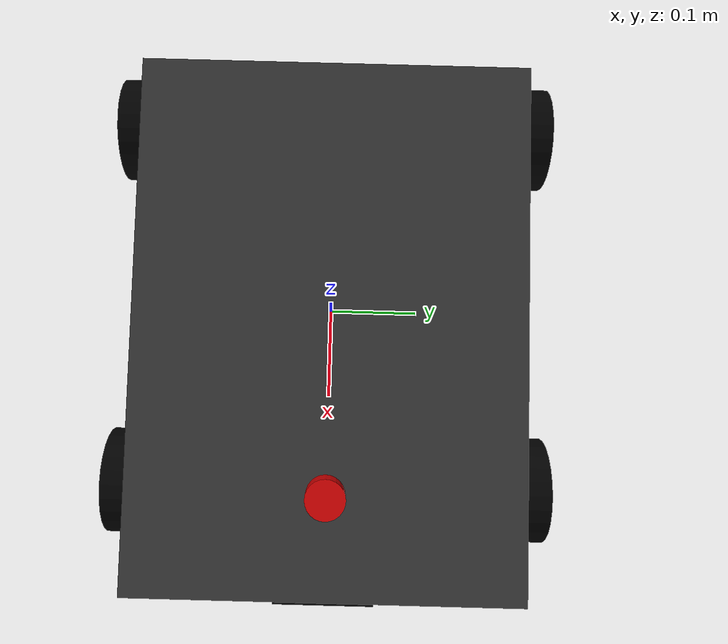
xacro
<?xml version="1.0"?>
<robot xmlns:xacro="http://www.ros.org/wiki/xacro" name="dummybot">

  <!-- Include ros2_control xacro -->
  <xacro:include filename="$(find dummybot_bringup)/description/urdf/dummybot.ros2_control.xacro"/>

  <!-- Properties -->
  <xacro:property name="use_mock_hardware" value="false"/>

  <!-- DIMENSIUNI FIZICE REALE - SISTEM ROS STANDARD -->
  <!-- X = înainte (FAȚĂ) = 36cm (ce tu numești "lățime") -->
  <!-- Y = lateral (STÂNGA-DREAPTA) = 46.5cm (ce tu numești "lungime") -->
  <!-- Z = sus (vertical) -->

  <!-- Roți -->
  <xacro:property name="wheel_radius" value="0.0555"/>     <!-- 69mm diametru / 2 -->
  <xacro:property name="wheel_width" value="0.0450"/>       <!-- 28mm grosime -->

  <!-- Distanțe între roți -->
  <xacro:property name="wheelbase" value="0.425"/>         <!-- FR-FL distanță FAȚĂ-SPATE (37.4cm) -->
  <xacro:property name="track_width" value="0.390"/>       <!-- FR-RR distanță LATERALĂ (39cm) -->

  <!-- Chassis -->
  <xacro:property name="chassis_length" value="0.495"/>    <!-- 36cm pe X (față-spate, "lățimea" ta) -->
  <xacro:property name="chassis_width" value="0.365"/>     <!-- 46.5cm pe Y (lateral, "lungimea" ta) -->
  <xacro:property name="chassis_height" value="0.142"/>    <!-- 16cm înălțime (Z) -->

  <xacro:property name="ground_clearance" value="0.070"/>  <!-- 5cm de la sol la baza chassis -->

  <!-- Poziționare roți față de chassis -->
  <!-- FR/FL la 5cm de față → +36/2 - 5 = +13cm = +0.13m -->
  <!-- RR/RL la 3cm de spate → -36/2 + 3 = -15cm = -0.15m -->
  <!-- Verificare: 13cm + 15cm = 28cm (ar trebui ~37.4cm pentru wheelbase) -->
  <!-- Corectie: 5cm față, 32.4cm spate? Sau 18.7cm față, 18.7cm spate? -->

  <!-- Să recalculăm cu wheelbase = 37.4cm: -->
  <!-- Centru roți față: +37.4/2 = +18.7cm -->
  <!-- Centru roți spate: -37.4/2 = -18.7cm -->
  <xacro:property name="front_wheel_x" value="0.195"/>     <!-- +18.7cm -->
  <xacro:property name="rear_wheel_x" value="-0.195"/>     <!-- -18.7cm -->
  <xacro:property name="left_wheel_y" value="0.210"/>     <!-- +18.7cm -->
  <xacro:property name="right_wheel_y" value="-0.210"/>     <!-- -18.7cm -->

  <!-- Offset vertical roți: centru la 5.8cm de sol, minus ground_clearance de 5cm -->
  <xacro:property name="wheel_z_offset" value="0.008"/>    <!-- 5.8cm - 5cm = 0.8cm -->
  <xacro:property name="lidar_len" value="0.037" />
  <xacro:property name="lidar_radius" value="0.018" />
  <xacro:property name="lidar_mass" value="0.015" />

  <!-- LiDAR poziționare -->
  <!-- "12cm de la fața carcasei până la început LiDAR" -->
  <!-- Dacă fața chassis e la +18cm, iar LiDAR începe la +12cm de la față... -->
  <!-- Stai, trebuie clarificat: 12cm de la MARGINEA chassis sau de la CENTRU? -->
  <!-- Presupun: 12cm de la MARGINEA din față (la +18cm) -->
  <!-- Deci început LiDAR = +18cm - 12cm = +6cm de la centru -->
  <!-- Centru LiDAR = +6cm + 1.9cm (jumătate) = +7.9cm = 0.079m -->
  <xacro:property name="lidar_x_offset" value="0.079"/>    <!-- 7.9cm înainte de centru -->
  <xacro:property name="lidar_z_offset" value="0.1775"/>   <!-- 17.75cm deasupra base_chassis -->

  <!-- ESP32 Hardware Interface -->
  <xacro:property name="serial_port" value="/dev/ttyUSB0"/>
  <xacro:property name="serial_baud" value="115200"/>
  <xacro:property name="ticks_per_revolution" value="2400"/>

  <!-- PID Controller Parameters (INT pentru ESP32, ordine: kp kd ki ko) -->
  <xacro:property name="pid_kp" value="100"/>
  <xacro:property name="pid_kd" value="25"/>
  <xacro:property name="pid_ki" value="40"/>
  <xacro:property name="pid_ko" value="25"/>

  <!-- Calibration Factors (FLOAT) -->
  <xacro:property name="calibration_fl" value="1.0"/>
  <xacro:property name="calibration_fr" value="1.0"/>
  <xacro:property name="calibration_rl" value="1.0"/>
  <xacro:property name="calibration_rr" value="1.0"/>

  <!-- Materials -->
  <material name="black">
    <color rgba="0.0 0.0 0.0 1.0"/>
  </material>

  <material name="dark_grey">
    <color rgba="0.2 0.2 0.2 1.0"/>
  </material>

  <material name="red">
    <color rgba="0.8 0.0 0.0 1.0"/>
  </material>

  <!-- BASE LINK (ROOT FRAME) -->
  <link name="base_link"/>

  <joint name="base_link_chassis_joint" type="fixed">
    <parent link="base_link"/>
    <child link="base_chassis"/>
    <origin xyz="0.0325 0 ${ground_clearance + chassis_height/2}" rpy="0 0 0"/>
  </joint>

  <!-- BASE CHASSIS -->
  <link name="base_chassis">
    <visual>
      <origin xyz="0 0 0" rpy="0 0 0"/>
      <geometry>
        <box size="${chassis_length} ${chassis_width} ${chassis_height}"/>
      </geometry>
      <material name="dark_grey"/>
    </visual>
    <collision>
      <origin xyz="0 0 0" rpy="0 0 0"/>
      <geometry>
        <box size="${chassis_length} ${chassis_width} ${chassis_height}"/>
      </geometry>
    </collision>
    <inertial>
      <origin xyz="0 0 0" rpy="0 0 0"/>
      <mass value="5.0"/>
      <inertia ixx="0.0833" ixy="0.0" ixz="0.0"
               iyy="0.1042" iyz="0.0"
               izz="0.1667"/>
    </inertial>
  </link>

  <!-- WHEEL MACRO -->
  <xacro:macro name="wheel" params="prefix x y">

    <link name="${prefix}_wheel_link">
      <visual>
        <!-- FĂRĂ rotație aici -->
        <origin xyz="0 0 0" rpy="${pi/2} 0 0"/>
        <geometry>
          <cylinder radius="${wheel_radius}" length="${wheel_width}"/>
        </geometry>
        <material name="black"/>
      </visual>
      <collision>
        <!-- FĂRĂ rotație aici -->
        <origin xyz="0 0 0" rpy="${pi/2} 0 0"/>
        <geometry>
          <cylinder radius="${wheel_radius}" length="${wheel_width}"/>
        </geometry>
      </collision>
      <inertial>
        <origin xyz="0 0 0" rpy="${pi/2} 0 0"/>
        <mass value="0.133"/>
        <inertia ixx="0.0001" ixy="0.0" ixz="0.0"
                iyy="0.0001" iyz="0.0"
                izz="0.0001"/>
      </inertial>
    </link>

    <joint name="${prefix}_wheel_joint" type="continuous">
      <parent link="base_link"/>
      <child link="${prefix}_wheel_link"/>
      <!-- ROTAȚIE AICI în joint origin -->
      <origin xyz="${x} ${y} ${wheel_radius}" rpy="0 0 0"/>
      <!-- Axa Y = roata se rotește în jurul axei laterale -->
      <axis xyz="0 1 0"/>
    </joint>

  </xacro:macro>

  <!-- INSTANTIATE 4 WHEELS -->
  <!-- FR = Front Right (față + dreapta, Y negativ) -->
  <!-- FL = Front Left (față + stânga, Y pozitiv) -->
  <!-- RR = Rear Right (spate + dreapta, Y negativ) -->
  <!-- RL = Rear Left (spate + stânga, Y pozitiv) -->

  <!-- CORECT: Swap X cu Y -->
  <!-- Front Left (față + stânga) -->
  <xacro:wheel prefix="front_left"  x="${front_wheel_x}"  y="${left_wheel_y}"/>

  <!-- Front Right (față + dreapta) -->
  <xacro:wheel prefix="front_right" x="${front_wheel_x}"  y="${right_wheel_y}"/>

  <!-- Rear Left (spate + stânga) -->
  <xacro:wheel prefix="rear_left"   x="${rear_wheel_x}"  y="${left_wheel_y}"/>

  <!-- Rear Right (spate + dreapta) -->
  <xacro:wheel prefix="rear_right"  x="${rear_wheel_x}"  y="${right_wheel_y}"/>

  <!-- LIDAR LD19 Link -->
  <link name="base_laser">
    <collision>
      <origin xyz="0 0 ${lidar_len/2}" rpy="0 0 0"/>
      <geometry>
        <cylinder length="${lidar_len}" radius="${lidar_radius}"/>
      </geometry>
    </collision>

    <visual>
      <origin xyz="0 0 ${lidar_len/2}" rpy="0 0 0"/>
      <geometry>
        <cylinder length="${lidar_len}" radius="${lidar_radius}"/>
      </geometry>
      <material name="red"/>
    </visual>

    <inertial>
      <origin xyz="0 0 ${lidar_len/2}  " rpy="0 0 0"/>
      <mass value="${lidar_mass}"/>
      <inertia
        ixx="${lidar_mass * 0.4 * (lidar_radius * lidar_radius)}" ixy="0.0" ixz="0.0"
        iyy="${lidar_mass * 0.4 * (lidar_radius * lidar_radius)}" iyz="0.0"
        izz="${lidar_mass * 0.4 * (lidar_radius * lidar_radius)}"/>
      </inertial>
    </link>

    <joint name="base_laser_joint" type="fixed">
      <parent link="base_link"/>
      <child link="base_laser"/>
      <origin xyz="0.185 0 0.210" rpy="0 0 0"/>
    </joint>

    <joint name="camera_joint" type="fixed">
        <parent link="base_link"/>
        <child link="camera_link"/>
        <origin xyz="0.280 0 0.160" rpy="0 0 0"/>
    </joint>

  <link name="camera_link">
      <visual>
          <geometry>
              <box size="0.024 0.094 0.029"/>
          </geometry>
          <material name="black"/>
      </visual>
      <visual>
          <origin xyz="0 0 -0.05"/>
          <geometry>
              <cylinder radius="0.002" length="0.1"/>
          </geometry>
          <material name="black"/>
      </visual>
  </link>

  <joint name="camera_optical_joint" type="fixed">
      <parent link="camera_link"/>
      <child link="camera_link_optical"/>
      <origin xyz="0 0 0" rpy="${-pi/2} 0 ${-pi/2}"/>
  </joint>

  <link name="camera_link_optical"></link>

  <!-- ROS2 CONTROL -->
  <xacro:dummybot_ros2_control
    name="DummyBotSystem"
    prefix=""
    serial_port="${serial_port}"
    serial_baud="${serial_baud}"
    wheel_radius="${wheel_radius}"
    wheel_separation="${track_width}"
    ticks_per_revolution="${ticks_per_revolution}"
    pid_kp="${pid_kp}"
    pid_kd="${pid_kd}"
    pid_ki="${pid_ki}"
    pid_ko="${pid_ko}"
    calibration_fl="${calibration_fl}"
    calibration_fr="${calibration_fr}"
    calibration_rl="${calibration_rl}"
    calibration_rr="${calibration_rr}"/>

</robot>
